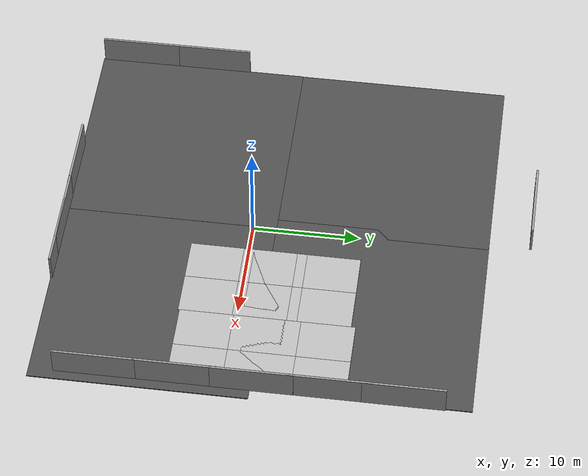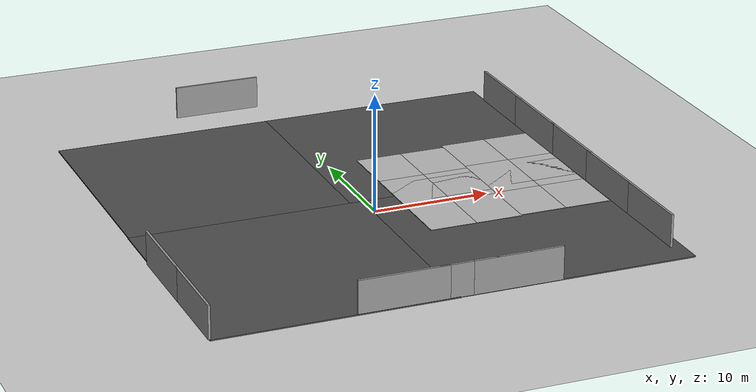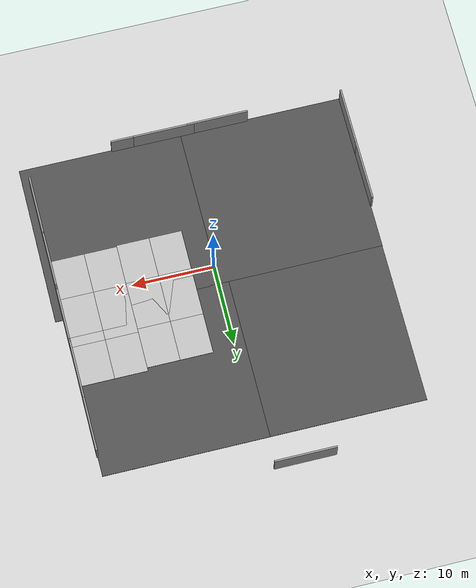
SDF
<sdf version="1.7">
 <world name="default">
  <model name="ground_plane">
   <static>1</static>
   <link name="link">
    <collision name="collision">
     <geometry><plane><normal>0 0 1</normal><size>100 100</size></plane></geometry>
     <surface><friction><ode><mu>100</mu><mu2>50</mu2></ode></friction></surface>
    </collision>
    <visual name="visual">
     <cast_shadows>0</cast_shadows>
     <geometry><plane><normal>0 0 1</normal><size>100 100</size></plane></geometry>
     <material>
      <script><uri>file://media/materials/scripts/gazebo.material</uri><name>Gazebo/Grey</name></script>
     </material>
    </visual>
   </link>
  </model>
  <model name="asphalt_plane">
   <static>1</static>
   <link name="link">
    <collision name="collision">
     <geometry><box><size>20 20 0.1</size></box></geometry>
     <surface><friction><ode><mu>100</mu><mu2>50</mu2></ode></friction></surface>
    </collision>
    <visual name="visual">
     <cast_shadows>0</cast_shadows>
     <geometry><box><size>20 20 0.1</size></box></geometry>
     <material>
      <script>
       <uri>model://asphalt_plane/materials/scripts</uri>
       <uri>model://asphalt_plane/materials/textures</uri>
       <name>vrc/asphalt</name>
      </script>
     </material>
    </visual>
   </link>
   <pose>-10.1942 -7.77867 0 0 -0 0</pose>
  </model>
  <model name="asphalt_plane_clone">
   <static>1</static>
   <link name="link">
    <collision name="collision">
     <geometry><box><size>20 20 0.1</size></box></geometry>
     <surface><friction><ode><mu>100</mu><mu2>50</mu2></ode></friction></surface>
    </collision>
    <visual name="visual">
     <cast_shadows>0</cast_shadows>
     <geometry><box><size>20 20 0.1</size></box></geometry>
     <material>
      <script>
       <uri>model://asphalt_plane/materials/scripts</uri>
       <uri>model://asphalt_plane/materials/textures</uri>
       <name>vrc/asphalt</name>
      </script>
     </material>
    </visual>
   </link>
   <pose>-10.1603 12.171 0 0 -0 0</pose>
  </model>
  <model name="asphalt_plane_clone_clone">
   <static>1</static>
   <link name="link">
    <collision name="collision">
     <geometry><box><size>20 20 0.1</size></box></geometry>
     <surface><friction><ode><mu>100</mu><mu2>50</mu2></ode></friction></surface>
    </collision>
    <visual name="visual">
     <cast_shadows>0</cast_shadows>
     <geometry><box><size>20 20 0.1</size></box></geometry>
     <material>
      <script>
       <uri>model://asphalt_plane/materials/scripts</uri>
       <uri>model://asphalt_plane/materials/textures</uri>
       <name>vrc/asphalt</name>
      </script>
     </material>
    </visual>
   </link>
   <pose>8.71597 12.1785 0 0 -0 0</pose>
  </model>
  <model name="asphalt_plane_clone_clone_0">
   <static>1</static>
   <link name="link">
    <collision name="collision">
     <geometry><box><size>20 20 0.1</size></box></geometry>
     <surface><friction><ode><mu>100</mu><mu2>50</mu2></ode></friction></surface>
    </collision>
    <visual name="visual">
     <cast_shadows>0</cast_shadows>
     <geometry><box><size>20 20 0.1</size></box></geometry>
     <material>
      <script>
       <uri>model://asphalt_plane/materials/scripts</uri>
       <uri>model://asphalt_plane/materials/textures</uri>
       <name>vrc/asphalt</name>
      </script>
     </material>
    </visual>
   </link>
   <pose>9.8068 -7.71671 0 0 -0 0</pose>
  </model>
  <model name="grey_wall">
   <static>1</static>
   <link name="link">
    <pose>0 0 1.4 0 -0 0</pose>
    <collision name="collision"><geometry><box><size>7.5 0.2 2.8</size></box></geometry></collision>
    <visual name="visual">
     <cast_shadows>0</cast_shadows>
     <geometry><box><size>7.5 0.2 2.8</size></box></geometry>
     <material>
      <script>
       <uri>model://grey_wall/materials/scripts</uri>
       <uri>model://grey_wall/materials/textures</uri>
       <name>vrc/grey_wall</name>
      </script>
     </material>
    </visual>
   </link>
   <pose>-4.8114 -17.6626 0 0 -0 0</pose>
  </model>
  <model name="grey_wall_clone">
   <static>1</static>
   <link name="link">
    <pose>0 0 1.4 0 -0 0</pose>
    <collision name="collision"><geometry><box><size>7.5 0.2 2.8</size></box></geometry></collision>
    <visual name="visual">
     <cast_shadows>0</cast_shadows>
     <geometry><box><size>7.5 0.2 2.8</size></box></geometry>
     <material>
      <script>
       <uri>model://grey_wall/materials/scripts</uri>
       <uri>model://grey_wall/materials/textures</uri>
       <name>vrc/grey_wall</name>
      </script>
     </material>
    </visual>
   </link>
   <pose>1.84642 -17.6367 0 0 -0 0</pose>
  </model>
  <model name="grey_wall_clone_0">
   <static>1</static>
   <link name="link">
    <pose>0 0 1.4 0 -0 0</pose>
    <collision name="collision"><geometry><box><size>7.5 0.2 2.8</size></box></geometry></collision>
    <visual name="visual">
     <cast_shadows>0</cast_shadows>
     <geometry><box><size>7.5 0.2 2.8</size></box></geometry>
     <material>
      <script>
       <uri>model://grey_wall/materials/scripts</uri>
       <uri>model://grey_wall/materials/textures</uri>
       <name>vrc/grey_wall</name>
      </script>
     </material>
    </visual>
   </link>
   <pose>4.62088 -17.6372 0 0 -0 0</pose>
  </model>
  <model name="grey_wall_clone_clone">
   <static>1</static>
   <link name="link">
    <pose>0 0 1.4 0 -0 0</pose>
    <collision name="collision"><geometry><box><size>7.5 0.2 2.8</size></box></geometry></collision>
    <visual name="visual">
     <cast_shadows>0</cast_shadows>
     <geometry><box><size>7.5 0.2 2.8</size></box></geometry>
     <material>
      <script>
       <uri>model://grey_wall/materials/scripts</uri>
       <uri>model://grey_wall/materials/textures</uri>
       <name>vrc/grey_wall</name>
      </script>
     </material>
    </visual>
   </link>
   <pose>-4.48764 26.0166 0 0 -0 0</pose>
  </model>
  <model name="grey_wall_clone_clone_clone">
   <static>1</static>
   <link name="link">
    <pose>0 0 1.4 0 -0 0</pose>
    <collision name="collision"><geometry><box><size>7.5 0.2 2.8</size></box></geometry></collision>
    <visual name="visual">
     <cast_shadows>0</cast_shadows>
     <geometry><box><size>7.5 0.2 2.8</size></box></geometry>
     <material>
      <script>
       <uri>model://grey_wall/materials/scripts</uri>
       <uri>model://grey_wall/materials/textures</uri>
       <name>vrc/grey_wall</name>
      </script>
     </material>
    </visual>
   </link>
   <pose>18.7544 16.0387 0 0 0 -1.56734</pose>
  </model>
  <model name="grey_wall_clone_clone_clone_clone">
   <static>1</static>
   <link name="link">
    <pose>0 0 1.4 0 -0 0</pose>
    <collision name="collision"><geometry><box><size>7.5 0.2 2.8</size></box></geometry></collision>
    <visual name="visual">
     <cast_shadows>0</cast_shadows>
     <geometry><box><size>7.5 0.2 2.8</size></box></geometry>
     <material>
      <script>
       <uri>model://grey_wall/materials/scripts</uri>
       <uri>model://grey_wall/materials/textures</uri>
       <name>vrc/grey_wall</name>
      </script>
     </material>
    </visual>
   </link>
   <pose>18.767 9.41754 0 0 0 -1.56734</pose>
  </model>
  <model name="grey_wall_clone_clone_clone_clone_0">
   <static>1</static>
   <link name="link">
    <pose>0 0 1.4 0 -0 0</pose>
    <collision name="collision"><geometry><box><size>7.5 0.2 2.8</size></box></geometry></collision>
    <visual name="visual">
     <cast_shadows>0</cast_shadows>
     <geometry><box><size>7.5 0.2 2.8</size></box></geometry>
     <material>
      <script>
       <uri>model://grey_wall/materials/scripts</uri>
       <uri>model://grey_wall/materials/textures</uri>
       <name>vrc/grey_wall</name>
      </script>
     </material>
    </visual>
   </link>
   <pose>18.7963 2.45369 0 0 0 -1.56734</pose>
  </model>
  <model name="grey_wall_clone_clone_clone_clone_1">
   <static>1</static>
   <link name="link">
    <pose>0 0 1.4 0 -0 0</pose>
    <collision name="collision"><geometry><box><size>7.5 0.2 2.8</size></box></geometry></collision>
    <visual name="visual">
     <cast_shadows>0</cast_shadows>
     <geometry><box><size>7.5 0.2 2.8</size></box></geometry>
     <material>
      <script>
       <uri>model://grey_wall/materials/scripts</uri>
       <uri>model://grey_wall/materials/textures</uri>
       <name>vrc/grey_wall</name>
      </script>
     </material>
    </visual>
   </link>
   <pose>18.8058 -4.41342 0 0 0 -1.56734</pose>
  </model>
  <model name="grey_wall_clone_clone_clone_clone_2">
   <static>1</static>
   <link name="link">
    <pose>0 0 1.4 0 -0 0</pose>
    <collision name="collision"><geometry><box><size>7.5 0.2 2.8</size></box></geometry></collision>
    <visual name="visual">
     <cast_shadows>0</cast_shadows>
     <geometry><box><size>7.5 0.2 2.8</size></box></geometry>
     <material>
      <script>
       <uri>model://grey_wall/materials/scripts</uri>
       <uri>model://grey_wall/materials/textures</uri>
       <name>vrc/grey_wall</name>
      </script>
     </material>
    </visual>
   </link>
   <pose>18.8343 -11.7301 0 0 0 -1.56734</pose>
  </model>
  <model name="mud_box">
   <static>1</static>
   <link name="link">
    <collision name="collision"><geometry><box><size>8 10 0.2</size></box></geometry></collision>
    <visual name="visual_1">
     <pose>-2 2.5 0 0 -0 0</pose>
     <cast_shadows>0</cast_shadows>
     <geometry><box><size>4 5 0.2</size></box></geometry>
     <material>
      <script>
       <uri>model://mud_box/materials/scripts</uri>
       <uri>model://mud_box/materials/textures</uri>
       <name>vrc/mud</name>
      </script>
     </material>
    </visual>
    <visual name="visual_2">
     <pose>2 2.5 0 0 -0 0</pose>
     <cast_shadows>0</cast_shadows>
     <geometry><box><size>4 5 0.2</size></box></geometry>
     <material>
      <script>
       <uri>model://mud_box/materials/scripts</uri>
       <uri>model://mud_box/materials/textures</uri>
       <name>vrc/mud</name>
      </script>
     </material>
    </visual>
    <visual name="visual_3">
     <pose>2 -2.5 0 0 -0 0</pose>
     <cast_shadows>0</cast_shadows>
     <geometry><box><size>4 5 0.2</size></box></geometry>
     <material>
      <script>
       <uri>model://mud_box/materials/scripts</uri>
       <uri>model://mud_box/materials/textures</uri>
       <name>vrc/mud</name>
      </script>
     </material>
    </visual>
    <visual name="visual_4">
     <pose>-2 -2.5 0 0 -0 0</pose>
     <cast_shadows>0</cast_shadows>
     <geometry><box><size>4 5 0.2</size></box></geometry>
     <material>
      <script>
       <uri>model://mud_box/materials/scripts</uri>
       <uri>model://mud_box/materials/textures</uri>
       <name>vrc/mud</name>
      </script>
     </material>
    </visual>
   </link>
   <pose>14.6148 5.88895 0 0 -0 0</pose>
  </model>
  <model name="mud_box_clone">
   <static>1</static>
   <link name="link">
    <collision name="collision"><geometry><box><size>8 10 0.2</size></box></geometry></collision>
    <visual name="visual_1">
     <pose>-2 2.5 0 0 -0 0</pose>
     <cast_shadows>0</cast_shadows>
     <geometry><box><size>4 5 0.2</size></box></geometry>
     <material>
      <script>
       <uri>model://mud_box/materials/scripts</uri>
       <uri>model://mud_box/materials/textures</uri>
       <name>vrc/mud</name>
      </script>
     </material>
    </visual>
    <visual name="visual_2">
     <pose>2 2.5 0 0 -0 0</pose>
     <cast_shadows>0</cast_shadows>
     <geometry><box><size>4 5 0.2</size></box></geometry>
     <material>
      <script>
       <uri>model://mud_box/materials/scripts</uri>
       <uri>model://mud_box/materials/textures</uri>
       <name>vrc/mud</name>
      </script>
     </material>
    </visual>
    <visual name="visual_3">
     <pose>2 -2.5 0 0 -0 0</pose>
     <cast_shadows>0</cast_shadows>
     <geometry><box><size>4 5 0.2</size></box></geometry>
     <material>
      <script>
       <uri>model://mud_box/materials/scripts</uri>
       <uri>model://mud_box/materials/textures</uri>
       <name>vrc/mud</name>
      </script>
     </material>
    </visual>
    <visual name="visual_4">
     <pose>-2 -2.5 0 0 -0 0</pose>
     <cast_shadows>0</cast_shadows>
     <geometry><box><size>4 5 0.2</size></box></geometry>
     <material>
      <script>
       <uri>model://mud_box/materials/scripts</uri>
       <uri>model://mud_box/materials/textures</uri>
       <name>vrc/mud</name>
      </script>
     </material>
    </visual>
   </link>
   <pose>14.6137 -0.307303 0 0 -0 0</pose>
  </model>
  <light name="sun" type="directional">
   <pose>0 0 10 0 -0 0</pose>
   <diffuse>0.8 0.8 0.8 1</diffuse>
   <specular>0.2 0.2 0.2 1</specular>
   <attenuation>
    <range>1000</range>
    <constant>0.9</constant>
    <linear>0.01</linear>
    <quadratic>0.001</quadratic>
   </attenuation>
   <direction>-0.5 0.1 -0.9</direction>
   <spot><inner_angle>0</inner_angle><outer_angle>0</outer_angle><falloff>0</falloff></spot>
  </light>
  <gravity>0 0 -9.8</gravity>
  <magnetic_field>6e-06 2.3e-05 -4.2e-05</magnetic_field>
  <atmosphere type="adiabatic"/>
  <physics name="default_physics" default="0" type="ode">
   <max_step_size>0.001</max_step_size>
   <real_time_factor>1</real_time_factor>
   <real_time_update_rate>1000</real_time_update_rate>
  </physics>
  <scene><ambient>0.4 0.4 0.4 1</ambient><background>0.7 0.7 0.7 1</background><shadows>1</shadows></scene>
  <audio><device>default</device></audio>
  <spherical_coordinates>
   <surface_model>EARTH_WGS84</surface_model>
   <latitude_deg>47.8406</latitude_deg>
   <longitude_deg>10.6199</longitude_deg>
   <elevation>740</elevation>
   <heading_deg>180</heading_deg>
  </spherical_coordinates>
  <model name="grey_wall_clone_clone_clone_clone_3">
   <static>1</static>
   <link name="link">
    <pose>0 0 1.4 0 -0 0</pose>
    <collision name="collision"><geometry><box><size>7.5 0.2 2.8</size></box></geometry></collision>
    <visual name="visual">
     <cast_shadows>0</cast_shadows>
     <geometry><box><size>7.5 0.2 2.8</size></box></geometry>
     <material>
      <script>
       <uri>model://grey_wall/materials/scripts</uri>
       <uri>model://grey_wall/materials/textures</uri>
       <name>vrc/grey_wall</name>
      </script>
     </material>
    </visual>
   </link>
   <pose>-20.1988 -13.9011 0 0 0 -1.56734</pose>
  </model>
  <model name="grey_wall_clone_clone_clone_clone_4">
   <static>1</static>
   <link name="link">
    <pose>0 0 1.4 0 -0 0</pose>
    <collision name="collision"><geometry><box><size>7.5 0.2 2.8</size></box></geometry></collision>
    <visual name="visual">
     <cast_shadows>0</cast_shadows>
     <geometry><box><size>7.5 0.2 2.8</size></box></geometry>
     <material>
      <script>
       <uri>model://grey_wall/materials/scripts</uri>
       <uri>model://grey_wall/materials/textures</uri>
       <name>vrc/grey_wall</name>
      </script>
     </material>
    </visual>
   </link>
   <pose>-20.2253 -6.83774 0 0 0 -1.56734</pose>
  </model>
  <model name="mud_box_clone_clone">
   <static>1</static>
   <link name="link">
    <collision name="collision"><geometry><box><size>8 10 0.2</size></box></geometry></collision>
    <visual name="visual_1">
     <pose>-2 2.5 0 0 -0 0</pose>
     <cast_shadows>0</cast_shadows>
     <geometry><box><size>4 5 0.2</size></box></geometry>
     <material>
      <script>
       <uri>model://mud_box/materials/scripts</uri>
       <uri>model://mud_box/materials/textures</uri>
       <name>vrc/mud</name>
      </script>
     </material>
    </visual>
    <visual name="visual_2">
     <pose>2 2.5 0 0 -0 0</pose>
     <cast_shadows>0</cast_shadows>
     <geometry><box><size>4 5 0.2</size></box></geometry>
     <material>
      <script>
       <uri>model://mud_box/materials/scripts</uri>
       <uri>model://mud_box/materials/textures</uri>
       <name>vrc/mud</name>
      </script>
     </material>
    </visual>
    <visual name="visual_3">
     <pose>2 -2.5 0 0 -0 0</pose>
     <cast_shadows>0</cast_shadows>
     <geometry><box><size>4 5 0.2</size></box></geometry>
     <material>
      <script>
       <uri>model://mud_box/materials/scripts</uri>
       <uri>model://mud_box/materials/textures</uri>
       <name>vrc/mud</name>
      </script>
     </material>
    </visual>
    <visual name="visual_4">
     <pose>-2 -2.5 0 0 -0 0</pose>
     <cast_shadows>0</cast_shadows>
     <geometry><box><size>4 5 0.2</size></box></geometry>
     <material>
      <script>
       <uri>model://mud_box/materials/scripts</uri>
       <uri>model://mud_box/materials/textures</uri>
       <name>vrc/mud</name>
      </script>
     </material>
    </visual>
   </link>
   <pose>6.63107 -0.452359 0 0 -0 0</pose>
  </model>
  <model name="mud_box_clone_0">
   <static>1</static>
   <link name="link">
    <collision name="collision"><geometry><box><size>8 10 0.2</size></box></geometry></collision>
    <visual name="visual_1">
     <pose>-2 2.5 0 0 -0 0</pose>
     <cast_shadows>0</cast_shadows>
     <geometry><box><size>4 5 0.2</size></box></geometry>
     <material>
      <script>
       <uri>model://mud_box/materials/scripts</uri>
       <uri>model://mud_box/materials/textures</uri>
       <name>vrc/mud</name>
      </script>
     </material>
    </visual>
    <visual name="visual_2">
     <pose>2 2.5 0 0 -0 0</pose>
     <cast_shadows>0</cast_shadows>
     <geometry><box><size>4 5 0.2</size></box></geometry>
     <material>
      <script>
       <uri>model://mud_box/materials/scripts</uri>
       <uri>model://mud_box/materials/textures</uri>
       <name>vrc/mud</name>
      </script>
     </material>
    </visual>
    <visual name="visual_3">
     <pose>2 -2.5 0 0 -0 0</pose>
     <cast_shadows>0</cast_shadows>
     <geometry><box><size>4 5 0.2</size></box></geometry>
     <material>
      <script>
       <uri>model://mud_box/materials/scripts</uri>
       <uri>model://mud_box/materials/textures</uri>
       <name>vrc/mud</name>
      </script>
     </material>
    </visual>
    <visual name="visual_4">
     <pose>-2 -2.5 0 0 -0 0</pose>
     <cast_shadows>0</cast_shadows>
     <geometry><box><size>4 5 0.2</size></box></geometry>
     <material>
      <script>
       <uri>model://mud_box/materials/scripts</uri>
       <uri>model://mud_box/materials/textures</uri>
       <name>vrc/mud</name>
      </script>
     </material>
    </visual>
   </link>
   <pose>6.63916 5.48619 0 0 -0 0</pose>
  </model>
 </world>
</sdf>
